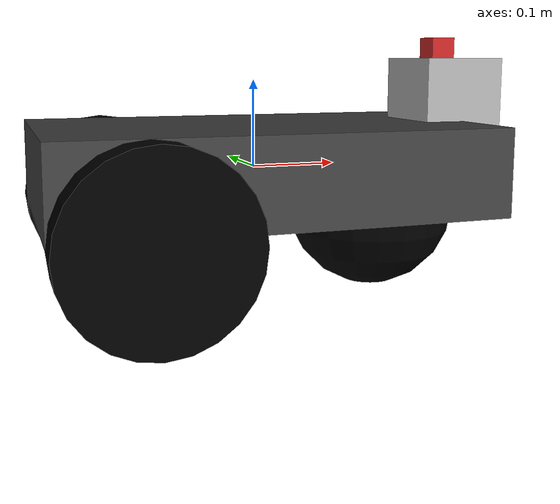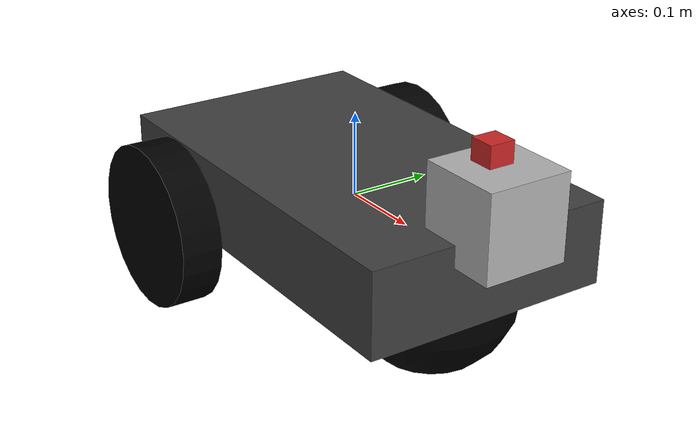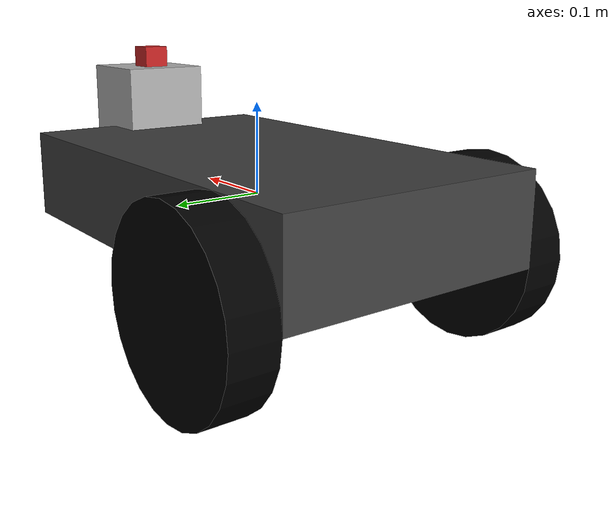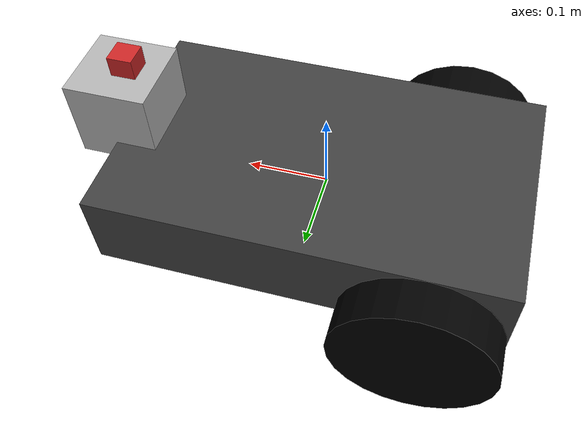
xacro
<?xml version="1.0"?>

<robot name="differential_drive_robot" xmlns:xacro="http://www.ros.org/wiki/xacro">

    <!-- Robot Parameters -->
    <xacro:property name="PI" value="3.14159265"/>
    <xacro:property name="body_length" value="0.5"/>
    <xacro:property name="body_width" value="0.3"/>
    <xacro:property name="body_height" value="0.1"/>
    <xacro:property name="body_density" value="7850.0"/> <!-- Steel -->
    <xacro:property name="body_mass" value="${body_density * body_length * body_height * body_width}"/>
    <xacro:property name="body_inertia_x" value="${1.0/12.0 * body_mass * (body_height*body_height + body_width*body_width)}"/>
    <xacro:property name="body_inertia_y" value="${1.0/12.0 * body_mass * (body_length*body_length + body_height*body_height)}"/>
    <xacro:property name="body_inertia_z" value="${1.0/12.0 * body_mass * (body_length*body_length + body_width*body_width)}"/>

    <xacro:property name="wheel_radius" value="0.1"/>
    <xacro:property name="wheel_width" value="0.05"/>
    <xacro:property name="wheel_separation" value="${body_width + wheel_width}"/>
    <xacro:property name="wheel_offset" value="${body_length/2 - wheel_radius}"/>
    <xacro:property name="wheel_density" value="900"/> <!-- Ruber -->
    <xacro:property name="wheel_mass" value="${wheel_density * PI * wheel_radius * wheel_radius * wheel_width}"/>
    <xacro:property name="wheel_inertia_x" value="${1.0/12.0 * wheel_mass * (3*wheel_radius*wheel_radius + wheel_width*wheel_width)}"/>
    <xacro:property name="wheel_inertia_y" value="${1.0/12.0 * wheel_mass * (3*wheel_radius*wheel_radius + wheel_width*wheel_width)}"/>
    <xacro:property name="wheel_inertia_z" value="${1.0/2.0 * wheel_mass * wheel_radius * wheel_radius}"/>

    <xacro:property name="caster_radius" value="0.1"/>
    <xacro:property name="caster_offset" value="${body_length/2 - caster_radius}"/>
    <xacro:property name="caster_density" value="0.1"/>
    <xacro:property name="caster_mass" value="${caster_density * 4.0/3.0 * PI * caster_radius * caster_radius * caster_radius}"/>
    <xacro:property name="caster_inertia_x" value="${2.0/5.0 * caster_mass * caster_radius * caster_radius}"/>
    <xacro:property name="caster_inertia_y" value="${2.0/5.0 * caster_mass * caster_radius * caster_radius}"/>
    <xacro:property name="caster_inertia_z" value="${2.0/5.0 * caster_mass * caster_radius * caster_radius}"/>

    <!-- Control Parameters -->
    <xacro:property name="max_linear_acceleration" value="10"/>

  <!-- Links -->
    <link name="base_footprint"/>

    <joint name="base_joint" type="fixed">
        <parent link="base_footprint"/>
        <child link="body_link"/>
        <origin xyz="0.0 0 0" rpy="0 0 0.0"/>
    </joint>
    <!-- Body Link -->
    <link name="body_link">
        <visual>
            <origin xyz="0.0 0.0 0.0" rpy="0.0 0.0 0.0"/>
            <geometry>
                <box size="${body_length} ${body_width} ${body_height}"/>
            </geometry>
            <material name="body_material">
                <color rgba="0.25 0.25 0.25 1.0"/>
            </material>
        </visual>
        <collision>
            <origin xyz="0.0 0.0 0.0" rpy="0.0 0.0 0.0"/>
            <geometry>
                <box size="${body_length} ${body_width} ${body_height}"/>
            </geometry>
        </collision>
        <inertial>
            <mass value="10"/>
            <inertia ixx="${body_inertia_x}" ixy="0.0" ixz="0.0" iyy="${body_inertia_y}" iyz="0" izz="${body_inertia_z}"/>
            <origin xyz="0 0 0" rpy="0 0 0"/>
        </inertial>
    </link>

    <!-- Left Wheel -->
    <link name="left_wheel_link">
        <visual>
            <origin xyz="0.0 0.0 0.0" rpy="1.570795 0.0 0.0"/>
            <geometry>
                <cylinder radius="${wheel_radius}" length="${wheel_width}"/>
            </geometry>
            <material name="wheel_material">
                <color rgba="0.0 0.0 0.0 1.0"/>
            </material>
        </visual>
        <collision>
            <origin xyz="0.0 0.0 0.0" rpy="1.570795 0.0 0.0"/>
            <geometry>
                <cylinder radius="${wheel_radius}" length="${wheel_width}"/>
            </geometry>
        </collision>
        <inertial>
            <mass value="2"/>
            <inertia ixx="${wheel_inertia_x}" ixy="0.0" ixz="0.0" iyy="${wheel_inertia_y}" iyz="0" izz="${wheel_inertia_z}"/>
            <origin xyz="0.0 0.0 0.0" rpy="1.570795 0.0 0.0"/>
        </inertial>
    </link>

    <!-- Right Wheel -->
    <link name="right_wheel_link">
        <visual>
            <origin xyz="0.0 0.0 0.0" rpy="1.570795 0.0 0.0"/>
            <geometry>
                <cylinder radius="${wheel_radius}" length="${wheel_width}"/>
            </geometry>
            <material name="wheel_material">
                <color rgba="0.0 0.0 0.0 1.0"/>
            </material>
        </visual>
        <collision>
            <origin xyz="0.0 0.0 0.0" rpy="1.570795 0.0 0.0"/>
            <geometry>
                <cylinder radius="${wheel_radius}" length="${wheel_width}"/>
            </geometry>
        </collision>
        <inertial>
            <mass value="2"/>
            <inertia ixx="${wheel_inertia_x}" ixy="0.0" ixz="0.0" iyy="${wheel_inertia_y}" iyz="0" izz="${wheel_inertia_z}"/>
            <origin xyz="0.0 0.0 0.0" rpy="1.570795 0.0 0.0"/>
        </inertial>
    </link>

    <!-- Caster Wheel -->
    <link name="caster_link">
        <visual>
            <origin xyz="0.0 0.0 0.0" rpy="0.0 0.0 0.0"/>
            <geometry>
                <sphere radius="${caster_radius}"/>
            </geometry>
            <material name="caster_material">
                <color rgba="0.0 0.0 0.0 1.0"/>
            </material>
        </visual>
        <collision>
            <origin xyz="0.0 0.0 0.0" rpy="0.0 0.0 0.0"/>
            <geometry>
                <sphere radius="${caster_radius}"/>
            </geometry>
        </collision>
        <inertial>
            <mass value="0.5"/>
            <inertia ixx="${caster_inertia_x}" ixy="0.0" ixz="0.0" iyy="${caster_inertia_y}" iyz="0" izz="${caster_inertia_z}"/>
            <origin xyz="0 0 0" rpy="0 0 0"/>
        </inertial>
    </link>

    <!-- Joints -->

    <!-- Left Wheel Joint -->
    <joint name="left_wheel_joint" type="continuous">
        <origin xyz="-${wheel_offset} ${wheel_separation/2} -${wheel_radius/2}" rpy="0 0 0"/>
        <parent link="body_link"/>
        <child link="left_wheel_link"/>
        <axis xyz="0 1 0"/>
        <limit effort="100" velocity="10.0"/>
        <dynamics damping="0.1" friction="0.1"/>
    </joint>

    <!-- Right Wheel Joint -->
    <joint name="right_wheel_joint" type="continuous">
        <origin xyz="-${wheel_offset} ${-wheel_separation/2} -${wheel_radius/2}" rpy="0 0 0"/>
        <parent link="body_link"/>
        <child link="right_wheel_link"/>
        <axis xyz="0 1 0"/>
        <limit effort="100" velocity="10.0"/>
        <dynamics damping="0.1" friction="0.1"/>
    </joint>

    <!-- Caster Wheel Joint (fixed) -->
    <joint name="caster_joint" type="fixed">
        <origin xyz="${caster_offset} 0 -${caster_radius/2}" rpy="0 0 0"/>
        <parent link="body_link"/>
        <child link="caster_link"/>
    </joint>

      <!-- camera -->

  <joint type="fixed" name="camera_joint">
    <origin xyz="0.240 0 0.135" rpy="0 0 0"/>
    <child link="camera_link"/>
    <parent link="body_link"/>
    <axis xyz="0 1 0" />
  </joint>

  <link name='camera_link'>
    <pose>0 0 0 0 0 0</pose>
    <inertial>
      <mass value="0.1"/>
      <origin xyz="0 0 0" rpy="0 0 0"/>
      <inertia
          ixx="1e-6" ixy="0" ixz="0"
          iyy="1e-6" iyz="0"
          izz="1e-6"
      />
    </inertial>

    <collision name='collision'>
      <origin xyz="0 0 0" rpy="0 0 0"/>
      <geometry>
        <box size=".03 .03 .03"/>
      </geometry>
    </collision>

    <visual name='camera_link_visual'>
      <origin xyz="0 0 0" rpy="0 0 0"/>
      <geometry>
        <box size=".03 .03 .03"/>
      </geometry>
    </visual>

  </link>

  <gazebo reference="camera_link">
    <material>Gazebo/Red</material>
  </gazebo>

  <joint type="fixed" name="camera_optical_joint">
    <origin xyz="0 0 0" rpy="-1.5707 0 -1.5707"/>
    <child link="camera_link_optical"/>
    <parent link="camera_link"/>
  </joint>

  <link name="camera_link_optical">
  </link>

   <!-- - Lidar -->
  <joint type="fixed" name="scan_joint">
     <origin xyz="0.250 0 0.075" rpy="0 0 0"/>
    <child link="scan_link"/>
    <parent link="body_link"/>
    <axis xyz="0 1 0" rpy="0 0 0"/>
  </joint>

  <link name='scan_link'>
    <inertial>
      <mass value="1e-5"/>
      <origin xyz="0 0 0" rpy="0 0 0"/>
      <inertia
          ixx="1e-6" ixy="0" ixz="0"
          iyy="1e-6" iyz="0"
          izz="1e-6"
      />
    </inertial>
    <collision name='collision'>
      <origin xyz="0 0 0" rpy="0 0 0"/>
      <geometry>
        <box size=".1 .1 .1"/>
      </geometry>
    </collision>

    <visual name='scan_link_visual'>
      <origin xyz="0 0 0" rpy="0 0 0"/>
      <geometry>
         <box size=".1 .1 .1"/>
      </geometry>
    </visual>
  </link>

    <!-- Gazebo Parameters -->
    <gazebo reference="body_link">
        <mu1>1.0</mu1>
        <mu2>1.0</mu2>
    </gazebo>

    <gazebo reference="right_wheel_link">
        <mu1>1.0</mu1>
        <mu2>1.0</mu2>
    </gazebo>

    <gazebo reference="left_wheel_link">
        <mu1>1.0</mu1>
        <mu2>1.0</mu2>
    </gazebo>

    <gazebo reference="caster_link">
        <mu1>0.000001</mu1>
        <mu2>0.000001</mu2>
    </gazebo>

    <!-- Gazebo Plugins -->
    <gazebo>
        <plugin filename="gz-sim-diff-drive-system" name="gz::sim::systems::DiffDrive">
            <right_joint>right_wheel_joint</right_joint>
            <left_joint>left_wheel_joint</left_joint>
            <wheel_separation>${wheel_separation}</wheel_separation>
            <wheel_radius>${wheel_radius}</wheel_radius>
            <max_linear_acceleration>${max_linear_acceleration}</max_linear_acceleration>
            <odom_publish_frequency>100</odom_publish_frequency>
            <topic>robot_vel</topic>
            <odom_topic>odom</odom_topic>
            <child_frame_id>base_footprint</child_frame_id>
        </plugin>

    </gazebo>

<gazebo reference="camera_link">
    <sensor name="camera" type="camera">
      <camera>
        <horizontal_fov>1.3962634</horizontal_fov>
        <image>
          <width>640</width>
          <height>480</height>
          <format>R8G8B8</format>
        </image>
        <clip>
          <near>0.1</near>
          <far>15</far>
        </clip>
        <noise>
          <type>gaussian</type>
          <!-- Noise is sampled independently per pixel on each frame.
               That pixel's noise value is added to each of its color
               channels, which at that point lie in the range [0,1]. -->
          <mean>0.0</mean>
          <stddev>0.007</stddev>
        </noise>
        <optical_frame_id>camera_link_optical</optical_frame_id>
        <camera_info_topic>camera/camera_info</camera_info_topic>
      </camera>
      <always_on>1</always_on>
      <update_rate>20</update_rate>
      <visualize>true</visualize>
      <topic>camera/image</topic>
    </sensor>
  </gazebo>

  <gazebo reference="scan_link">
    <sensor name="gpu_lidar" type="gpu_lidar">
      <update_rate>10</update_rate>
      <topic>scan</topic>
      <gz_frame_id>scan_link</gz_frame_id>
      <lidar>
        <scan>
          <horizontal>
            <samples>720</samples>
            <!--(max_angle-min_angle)/samples * resolution -->
            <resolution>1</resolution>
            <min_angle>-3.14156</min_angle>
            <max_angle>3.14156</max_angle>
          </horizontal>
          <!-- Dirty hack for fake lidar detections with ogre 1 rendering in VM -->
        </scan>
        <range>
          <min>0.05</min>
          <max>10.0</max>
          <resolution>0.01</resolution>
        </range>
        <noise>
            <type>gaussian</type>
            <mean>0.0</mean>
            <stddev>0.01</stddev>
        </noise>
        <frame_id>scan_link</frame_id>
      </lidar>
      <always_on>1</always_on>
      <visualize>true</visualize>
    </sensor>
  </gazebo>

    <gazebo>
        <plugin filename="gz-sim-joint-state-publisher-system" name="gz::sim::systems::JointStatePublisher">
            <topic>joint_states</topic>
            <joint_name>right_wheel_joint</joint_name>
            <joint_name>left_wheel_joint</joint_name>
        </plugin>
    </gazebo>

</robot>
